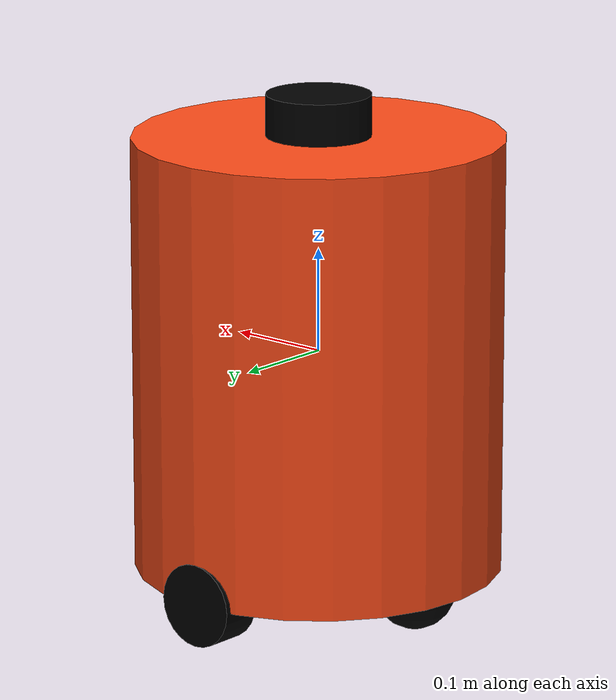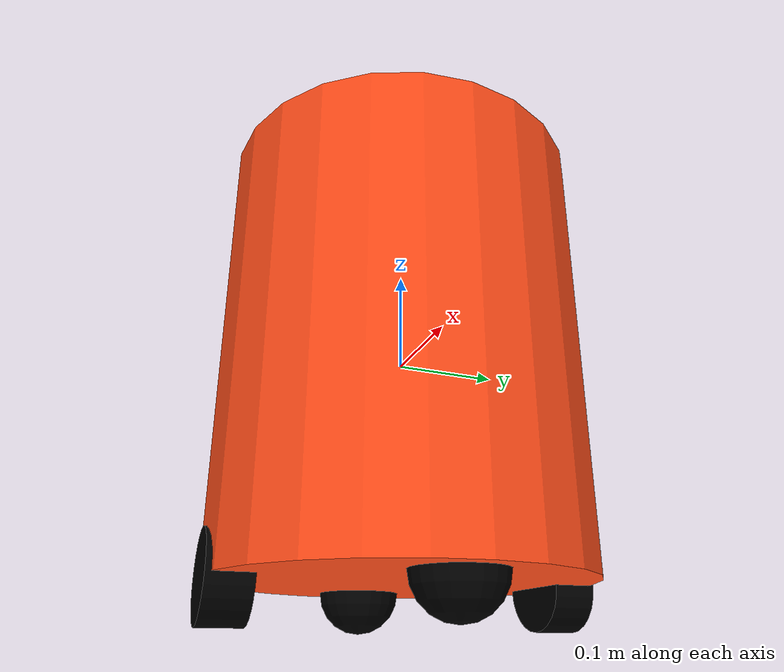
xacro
<?xml version="1.0"?>
<robot xmlns:xacro="http://www.ros.org/wiki/xacro"  name="tb2_1">

    <xacro:include filename="robot_core.xacro"/>

    <xacro:include filename="gazebo_control.xacro"/>

    <xacro:include filename="lidar.xacro"/>

</robot>

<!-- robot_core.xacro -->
<robot xmlns:xacro="http://www.ros.org/wiki/xacro">

	<xacro:include filename="inertial_macros.xacro" />

    <material name="orange">
		<color rgba="1 0.3 0.1 1" />
    </material>

    <material name="black">
		<color rgba="0 0 0 1" />
    </material>

    <!-- BASE_LINK -->

    <link name="tb2_base_link">
    </link>

	<link name="tb2_base_footprint">
	</link>

	<joint name="tb2_base_footprint_joint" type="fixed">
		<parent link="tb2_base_footprint" />
		<child  link="tb2_base_link" />
		<origin xyz="0 0 0" rpy="0 0 0" />
	</joint>

    <!-- CHASSIS -->

    <link name="tb2_chassis">
    	<visual>
			<origin xyz="0 0 0" />
    	    <geometry>
				<cylinder radius="0.177" length="0.420" />
    	    </geometry>
			<material name="orange" />
    	</visual>
    	<collision>
			<origin xyz="0 0 0" />
    	    <geometry>
				<cylinder radius="0.177" length="0.420" />
    	    </geometry>
    	</collision>
    	<xacro:inertial_cylinder mass="0.5" length="0.420" radius="0.177">
			<origin xyz="0 0 0" rpy="0 0 0" />
    	</xacro:inertial_cylinder>
    </link>

    <gazebo reference="tb2_chassis">
        <material>Gazebo/Orange</material>
    </gazebo>

    <joint name="tb2_chassis_joint" type="fixed">
		<parent link="tb2_base_link" />
		<child link="tb2_chassis" />
		<origin xyz="0 0 0" />
    </joint>

    <!-- LEFT_WHEEL -->

    <link name="tb2_left_wheel">
    	<visual>
    	    <geometry>
				<cylinder radius="0.04" length="0.04" />
    	    </geometry>
			<material name="black" />
    	</visual>
    	<collision>
    	    <geometry>
				<cylinder radius="0.04" length="0.04" />
    	    </geometry>
    	</collision>
    	<xacro:inertial_cylinder mass="0.1" length="0.04" radius="0.04">
			<origin xyz="0 0 0" rpy="0 0 0" />
    	</xacro:inertial_cylinder>
    </link>

    <gazebo reference="tb2_left_wheel">
        <material>Gazebo/Black</material>
    </gazebo>

    <joint name="tb2_left_wheel_joint" type="continuous">
		<parent link="tb2_chassis" />
		<child link="tb2_left_wheel" />
		<origin xyz="0 0.157 -0.210" rpy="-${pi/2} 0 0" />
		<axis xyz="0 0 1" />
    </joint>

    <!-- RIGHT_WHEEL -->

    <link name="tb2_right_wheel">
    	<visual>
    	    <geometry>
				<cylinder radius="0.04" length="0.04" />
    	    </geometry>
			<material name="black" />
    	</visual>
    	<collision>
    	    <geometry>
				<cylinder radius="0.04" length="0.04" />
    	    </geometry>
    	</collision>
    	<xacro:inertial_cylinder mass="0.1" length="0.04" radius="0.04">
			<origin xyz="0 0 0" rpy="0 0 0" />
    	</xacro:inertial_cylinder>
    </link>

    <gazebo reference="tb2_right_wheel">
        <material>Gazebo/Black</material>
    </gazebo>

    <joint name="tb2_right_wheel_joint" type="continuous">
		<parent link="tb2_chassis" />
		<child link="tb2_right_wheel" />
		<origin xyz="0 -0.157 -0.210" rpy="${pi/2} 0 0" />
		<axis xyz="0 0 -1" />
    </joint>

    <!-- CASTER WHEEL -->

    <link name="tb2_caster_wheel_forward">
        <visual>
            <geometry>
				<sphere radius="0.04" />
    	    </geometry>
			<material name="black" />
    	</visual>
    	<collision>
            <geometry>
				<sphere radius="0.04" />
    	    </geometry>
    	</collision>
    	<xacro:inertial_sphere mass="0.1" radius="0.04">
			<origin xyz="0 0 0" rpy="0 0 0" />
    	</xacro:inertial_sphere>
    </link>

    <gazebo reference="tb2_caster_wheel_forward">
        <material>Gazebo/Black</material>
		<mu1 value="0.001" />
		<mu2 value="0.001" />
    </gazebo>

    <joint name="tb2_caster_wheel_forward_joint" type="fixed">
		<parent link="tb2_chassis" />
		<child link="tb2_caster_wheel_forward" />
		<origin xyz="0.12 0 -0.210" />
    </joint>

	<link name="tb2_caster_wheel_backward">
		<visual>
			<geometry>
				<sphere radius="0.04" />
			</geometry>
			<material name="black" />
		</visual>
		<collision>
			<geometry>
				<sphere radius="0.04" />
			</geometry>
		</collision>
		<xacro:inertial_sphere mass="0.1" radius="0.04">
			<origin xyz="0 0 0" rpy="0 0 0" />
		</xacro:inertial_sphere>
	</link>

	<gazebo reference="tb2_caster_wheel_backward">
		<material>Gazebo/Black</material>
		<mu1 value="0.001" />
		<mu2 value="0.001" />
	</gazebo>

	<joint name="tb2_caster_wheel_backward_joint" type="fixed">
		<parent link="tb2_chassis" />
		<child link="tb2_caster_wheel_backward" />
		<origin xyz="-0.12 0 -0.210" />
	</joint>

</robot>

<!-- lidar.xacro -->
<robot xmlns:xacro="http://www.ros.org/wiki/xacro">

    <link name="tb2_laser_frame">
        <visual>
    	    <geometry>
    	        <cylinder radius="0.05" length="0.04"/>
    	    </geometry>
    	    <material name="black"/>
    	</visual>
    	<collision>
    	    <geometry>
    	        <cylinder radius="0.05" length="0.04"/>
    	    </geometry>
    	</collision>
    	<xacro:inertial_cylinder mass="0.1" length="0.04" radius="0.05">
    	    <origin xyz="0 0 0" rpy="0 0 0"/>
    	</xacro:inertial_cylinder>
    </link>

    <gazebo reference="tb2_laser_frame">
        <material>Gazebo/Black</material>
        <sensor name="laser" type="ray">
            <pose>0 0 0 0 0 0</pose>
            <visualize>false</visualize>
            <update_rate>10</update_rate>
            <ray>
                <scan>
                    <horizontal>
                        <samples>360</samples>
                        <min_angle>-3.14</min_angle>
                        <max_angle>3.14</max_angle>
                    </horizontal>
                </scan>
                <range>
                    <min>0.3</min>
                    <max>12</max>
                </range>
            </ray>
            <plugin name="tb2_laser_controller" filename="libgazebo_ros_ray_sensor.so">
                <ros>
                    <argument>~/out:=/dyn/scan</argument>
                </ros>
                <output_type>sensor_msgs/LaserScan</output_type>
                <frame_name>laser_frame</frame_name>
            </plugin>
        </sensor>
    </gazebo>

    <joint name="laser_joint" type="fixed">
        <parent link="tb2_chassis"/>
        <child link="tb2_laser_frame"/>
        <origin xyz="0 0 0.230" rpy="0 0 0"/>
    </joint>

</robot>
